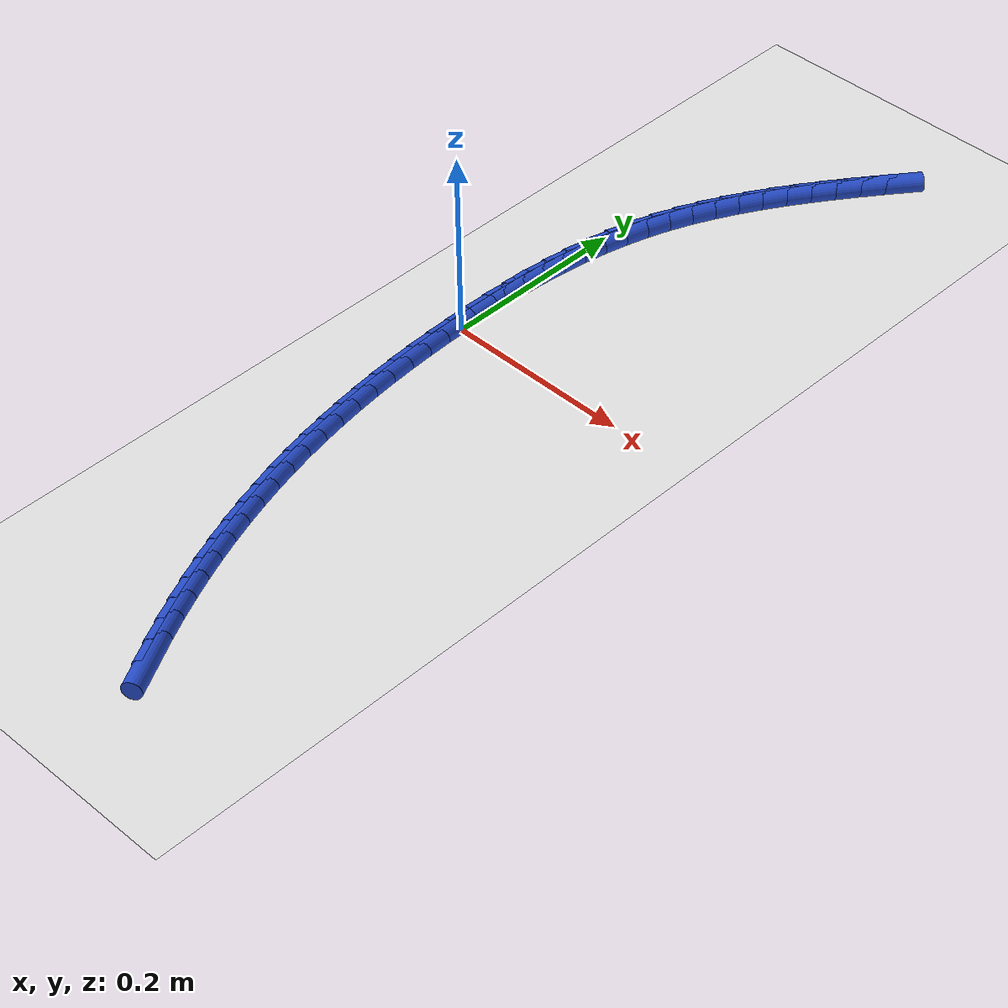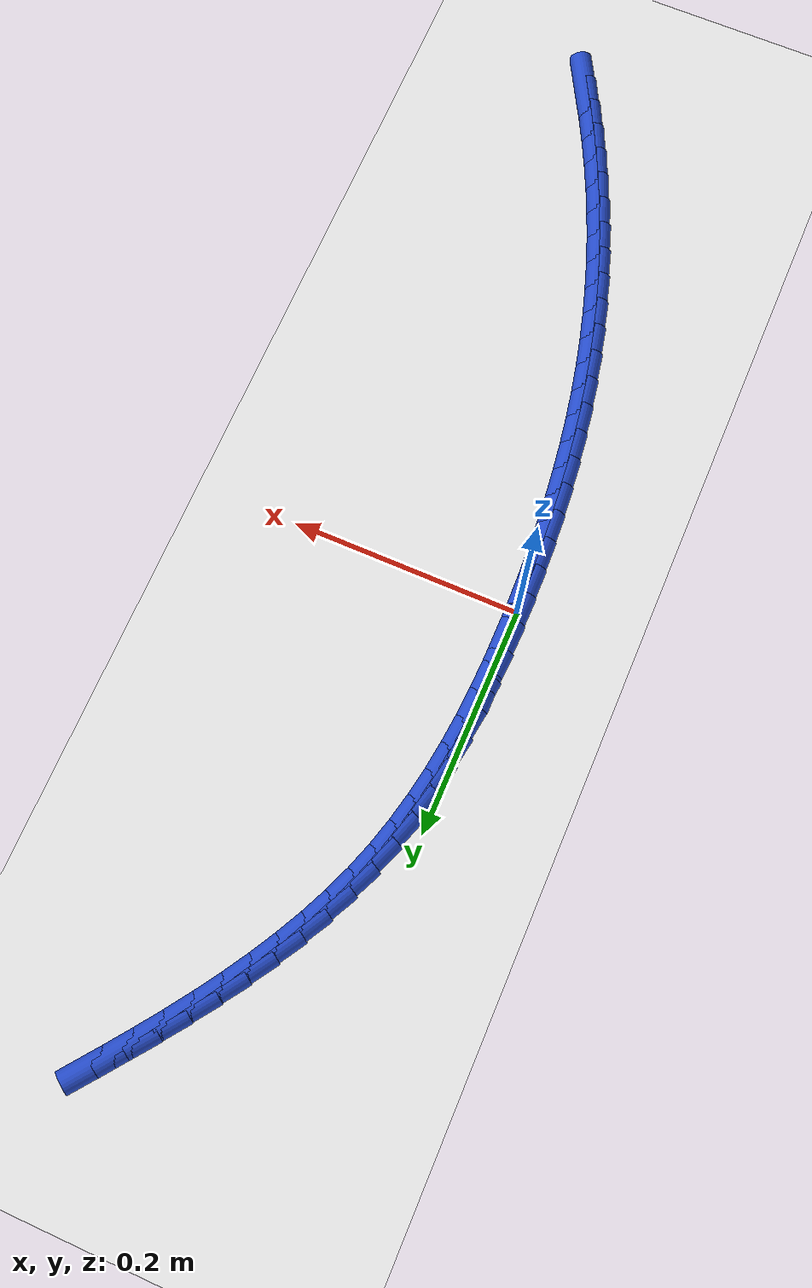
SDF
<sdf version="1.6">
 <world name="default">
  <model name="ground_plane">
   <static>1</static>
   <link name="link">
    <collision name="collision">
     <geometry><plane><normal>0 0 1</normal><size>100 100</size></plane></geometry>
     <surface><friction><ode><mu>100</mu><mu2>50</mu2></ode></friction></surface>
    </collision>
    <visual name="visual">
     <cast_shadows>0</cast_shadows>
     <geometry><plane><normal>0 0 1</normal><size>100 100</size></plane></geometry>
     <material>
      <script><uri>file://media/materials/scripts/gazebo.material</uri><name>Gazebo/WhiteGlow</name></script>
     </material>
    </visual>
   </link>
  </model>
  <model name="line">
   <link name="link_0">
    <pose>-1.0842021724855044e-18 2.7755575615628914e-17 0.01 0 1.57 -1.5603251618580196</pose>
    <collision name="collision">
     <geometry><cylinder><radius>0.01</radius><length>0.08</length></cylinder></geometry>
    </collision>
    <visual name="visual">
     <material>
      <script><name>Gazebo/Blue</name><uri>file://media/materials/scripts/gazebo.material</uri></script>
     </material>
     <geometry><cylinder><radius>0.01</radius><length>0.08</length></cylinder></geometry>
    </visual>
   </link>
   <link name="link_1">
    <pose>-0.0002701414424099219 0.02579766155151942 0.01 0 1.57 1.5595440917151902</pose>
    <collision name="collision">
     <geometry><cylinder><radius>0.01</radius><length>0.08</length></cylinder></geometry>
    </collision>
    <visual name="visual">
     <material>
      <script><name>Gazebo/Blue</name><uri>file://media/materials/scripts/gazebo.material</uri></script>
     </material>
     <geometry><cylinder><radius>0.01</radius><length>0.08</length></cylinder></geometry>
    </visual>
   </link>
   <link name="link_2">
    <pose>2.0445288560491106e-05 0.05162137255731039 0.01 0 1.57 1.5342640760914426</pose>
    <collision name="collision">
     <geometry><cylinder><radius>0.01</radius><length>0.08</length></cylinder></geometry>
    </collision>
    <visual name="visual">
     <material>
      <script><name>Gazebo/Blue</name><uri>file://media/materials/scripts/gazebo.material</uri></script>
     </material>
     <geometry><cylinder><radius>0.01</radius><length>0.08</length></cylinder></geometry>
    </visual>
   </link>
   <link name="link_3">
    <pose>0.0009629880714867451 0.07741018709593615 0.01 0 1.57 1.5052798086044072</pose>
    <collision name="collision">
     <geometry><cylinder><radius>0.01</radius><length>0.08</length></cylinder></geometry>
    </collision>
    <visual name="visual">
     <material>
      <script><name>Gazebo/Blue</name><uri>file://media/materials/scripts/gazebo.material</uri></script>
     </material>
     <geometry><cylinder><radius>0.01</radius><length>0.08</length></cylinder></geometry>
    </visual>
   </link>
   <link name="link_4">
    <pose>0.002648714784944347 0.10310315924595989 0.01 0 1.57 1.472425936517467</pose>
    <collision name="collision">
     <geometry><cylinder><radius>0.01</radius><length>0.08</length></cylinder></geometry>
    </collision>
    <visual name="visual">
     <material>
      <script><name>Gazebo/Blue</name><uri>file://media/materials/scripts/gazebo.material</uri></script>
     </material>
     <geometry><cylinder><radius>0.01</radius><length>0.08</length></cylinder></geometry>
    </visual>
   </link>
   <link name="link_5">
    <pose>0.005168853307508804 0.1286393430859448 0.01 0 1.57 1.4355298800457483</pose>
    <collision name="collision">
     <geometry><cylinder><radius>0.01</radius><length>0.08</length></cylinder></geometry>
    </collision>
    <visual name="visual">
     <material>
      <script><name>Gazebo/Blue</name><uri>file://media/materials/scripts/gazebo.material</uri></script>
     </material>
     <geometry><cylinder><radius>0.01</radius><length>0.08</length></cylinder></geometry>
    </visual>
   </link>
   <link name="link_6">
    <pose>0.008614631517755624 0.15395779269445406 0.01 0 1.57 1.3944258125383404</pose>
    <collision name="collision">
     <geometry><cylinder><radius>0.01</radius><length>0.08</length></cylinder></geometry>
    </collision>
    <visual name="visual">
     <material>
      <script><name>Gazebo/Blue</name><uri>file://media/materials/scripts/gazebo.material</uri></script>
     </material>
     <geometry><cylinder><radius>0.01</radius><length>0.08</length></cylinder></geometry>
    </visual>
   </link>
   <link name="link_7">
    <pose>0.013077277294260312 0.17899756215005097 0.01 0 1.57 1.3489729384937394</pose>
    <collision name="collision">
     <geometry><cylinder><radius>0.01</radius><length>0.08</length></cylinder></geometry>
    </collision>
    <visual name="visual">
     <material>
      <script><name>Gazebo/Blue</name><uri>file://media/materials/scripts/gazebo.material</uri></script>
     </material>
     <geometry><cylinder><radius>0.01</radius><length>0.08</length></cylinder></geometry>
    </visual>
   </link>
   <link name="link_8">
    <pose>0.01864801851559838 0.20369770553129862 0.01 0 1.57 1.2990785257821285</pose>
    <collision name="collision">
     <geometry><cylinder><radius>0.01</radius><length>0.08</length></cylinder></geometry>
    </collision>
    <visual name="visual">
     <material>
      <script><name>Gazebo/Blue</name><uri>file://media/materials/scripts/gazebo.material</uri></script>
     </material>
     <geometry><cylinder><radius>0.01</radius><length>0.08</length></cylinder></geometry>
    </visual>
   </link>
   <link name="link_9">
    <pose>0.025418083060345327 0.22799727691676025 0.01 0 1.57 1.2449418229550864</pose>
    <collision name="collision">
     <geometry><cylinder><radius>0.01</radius><length>0.08</length></cylinder></geometry>
    </collision>
    <visual name="visual">
     <material>
      <script><name>Gazebo/Blue</name><uri>file://media/materials/scripts/gazebo.material</uri></script>
     </material>
     <geometry><cylinder><radius>0.01</radius><length>0.08</length></cylinder></geometry>
    </visual>
   </link>
   <link name="link_10">
    <pose>0.033473717230176406 0.25183759924479177 0.01 0 1.57 1.1910577845415524</pose>
    <collision name="collision">
     <geometry><cylinder><radius>0.01</radius><length>0.08</length></cylinder></geometry>
    </collision>
    <visual name="visual">
     <material>
      <script><name>Gazebo/Blue</name><uri>file://media/materials/scripts/gazebo.material</uri></script>
     </material>
     <geometry><cylinder><radius>0.01</radius><length>0.08</length></cylinder></geometry>
    </visual>
   </link>
   <link name="link_11">
    <pose>0.04280025278954684 0.2752059569917476 0.01 0 1.57 1.141720539695457</pose>
    <collision name="collision">
     <geometry><cylinder><radius>0.01</radius><length>0.08</length></cylinder></geometry>
    </collision>
    <visual name="visual">
     <material>
      <script><name>Gazebo/Blue</name><uri>file://media/materials/scripts/gazebo.material</uri></script>
     </material>
     <geometry><cylinder><radius>0.01</radius><length>0.08</length></cylinder></geometry>
    </visual>
   </link>
   <link name="link_12">
    <pose>0.053289159484183765 0.29813238410159343 0.01 0 1.57 1.0972111444542392</pose>
    <collision name="collision">
     <geometry><cylinder><radius>0.01</radius><length>0.08</length></cylinder></geometry>
    </collision>
    <visual name="visual">
     <material>
      <script><name>Gazebo/Blue</name><uri>file://media/materials/scripts/gazebo.material</uri></script>
     </material>
     <geometry><cylinder><radius>0.01</radius><length>0.08</length></cylinder></geometry>
    </visual>
   </link>
   <link name="link_13">
    <pose>0.06482833830782857 0.32064853990681197 0.01 0 1.57 1.0575499763880079</pose>
    <collision name="collision">
     <geometry><cylinder><radius>0.01</radius><length>0.08</length></cylinder></geometry>
    </collision>
    <visual name="visual">
     <material>
      <script><name>Gazebo/Blue</name><uri>file://media/materials/scripts/gazebo.material</uri></script>
     </material>
     <geometry><cylinder><radius>0.01</radius><length>0.08</length></cylinder></geometry>
    </visual>
   </link>
   <link name="link_14">
    <pose>0.0773056902542226 0.3427860837398861 0.01 0 1.57 1.0226829581184442</pose>
    <collision name="collision">
     <geometry><cylinder><radius>0.01</radius><length>0.08</length></cylinder></geometry>
    </collision>
    <visual name="visual">
     <material>
      <script><name>Gazebo/Blue</name><uri>file://media/materials/scripts/gazebo.material</uri></script>
     </material>
     <geometry><cylinder><radius>0.01</radius><length>0.08</length></cylinder></geometry>
    </visual>
   </link>
   <link name="link_15">
    <pose>0.09060911631710718 0.3645766749332985 0.01 0 1.57 0.9925098947791501</pose>
    <collision name="collision">
     <geometry><cylinder><radius>0.01</radius><length>0.08</length></cylinder></geometry>
    </collision>
    <visual name="visual">
     <material>
      <script><name>Gazebo/Blue</name><uri>file://media/materials/scripts/gazebo.material</uri></script>
     </material>
     <geometry><cylinder><radius>0.01</radius><length>0.08</length></cylinder></geometry>
    </visual>
   </link>
   <link name="link_16">
    <pose>0.1046265174902237 0.3860519728195321 0.01 0 1.57 0.9669083268073221</pose>
    <collision name="collision">
     <geometry><cylinder><radius>0.01</radius><length>0.08</length></cylinder></geometry>
    </collision>
    <visual name="visual">
     <material>
      <script><name>Gazebo/Blue</name><uri>file://media/materials/scripts/gazebo.material</uri></script>
     </material>
     <geometry><cylinder><radius>0.01</radius><length>0.08</length></cylinder></geometry>
    </visual>
   </link>
   <link name="link_17">
    <pose>0.1192457947673135 0.40724363673106945 0.01 0 1.57 0.9457525347122957</pose>
    <collision name="collision">
     <geometry><cylinder><radius>0.01</radius><length>0.08</length></cylinder></geometry>
    </collision>
    <visual name="visual">
     <material>
      <script><name>Gazebo/Blue</name><uri>file://media/materials/scripts/gazebo.material</uri></script>
     </material>
     <geometry><cylinder><radius>0.01</radius><length>0.08</length></cylinder></geometry>
    </visual>
   </link>
   <link name="link_18">
    <pose>0.13435484914211787 0.42818332600039344 0.01 0 1.57 0.9289280894465428</pose>
    <collision name="collision">
     <geometry><cylinder><radius>0.01</radius><length>0.08</length></cylinder></geometry>
    </collision>
    <visual name="visual">
     <material>
      <script><name>Gazebo/Blue</name><uri>file://media/materials/scripts/gazebo.material</uri></script>
     </material>
     <geometry><cylinder><radius>0.01</radius><length>0.08</length></cylinder></geometry>
    </visual>
   </link>
   <link name="link_19">
    <pose>0.14984158160837827 0.4489026999599868 0.01 0 1.57 0.9163426927815157</pose>
    <collision name="collision">
     <geometry><cylinder><radius>0.01</radius><length>0.08</length></cylinder></geometry>
    </collision>
    <visual name="visual">
     <material>
      <script><name>Gazebo/Blue</name><uri>file://media/materials/scripts/gazebo.material</uri></script>
     </material>
     <geometry><cylinder><radius>0.01</radius><length>0.08</length></cylinder></geometry>
    </visual>
   </link>
   <link name="link_240">
    <pose>0.1275472444378693 -0.4885320790127863 0.01 0 1.57 -1.0701911203394223</pose>
    <collision name="collision">
     <geometry><cylinder><radius>0.01</radius><length>0.08</length></cylinder></geometry>
    </collision>
    <visual name="visual">
     <material>
      <script><name>Gazebo/Blue</name><uri>file://media/materials/scripts/gazebo.material</uri></script>
     </material>
     <geometry><cylinder><radius>0.01</radius><length>0.08</length></cylinder></geometry>
    </visual>
   </link>
   <link name="link_241">
    <pose>0.11521129594308037 -0.46598372214505385 0.01 0 1.57 -1.096110599936363</pose>
    <collision name="collision">
     <geometry><cylinder><radius>0.01</radius><length>0.08</length></cylinder></geometry>
    </collision>
    <visual name="visual">
     <material>
      <script><name>Gazebo/Blue</name><uri>file://media/materials/scripts/gazebo.material</uri></script>
     </material>
     <geometry><cylinder><radius>0.01</radius><length>0.08</length></cylinder></geometry>
    </visual>
   </link>
   <link name="link_242">
    <pose>0.10348096943237915 -0.44315651439572856 0.01 0 1.57 -1.1220027458234654</pose>
    <collision name="collision">
     <geometry><cylinder><radius>0.01</radius><length>0.08</length></cylinder></geometry>
    </collision>
    <visual name="visual">
     <material>
      <script><name>Gazebo/Blue</name><uri>file://media/materials/scripts/gazebo.material</uri></script>
     </material>
     <geometry><cylinder><radius>0.01</radius><length>0.08</length></cylinder></geometry>
    </visual>
   </link>
   <link name="link_243">
    <pose>0.09236257345792548 -0.4200686101291398 0.01 0 1.57 -1.1479966930116592</pose>
    <collision name="collision">
     <geometry><cylinder><radius>0.01</radius><length>0.08</length></cylinder></geometry>
    </collision>
    <visual name="visual">
     <material>
      <script><name>Gazebo/Blue</name><uri>file://media/materials/scripts/gazebo.material</uri></script>
     </material>
     <geometry><cylinder><radius>0.01</radius><length>0.08</length></cylinder></geometry>
    </visual>
   </link>
   <link name="link_244">
    <pose>0.0818634734949841 -0.3967338915313437 0.01 0 1.57 -1.174105593444063</pose>
    <collision name="collision">
     <geometry><cylinder><radius>0.01</radius><length>0.08</length></cylinder></geometry>
    </collision>
    <visual name="visual">
     <material>
      <script><name>Gazebo/Blue</name><uri>file://media/materials/scripts/gazebo.material</uri></script>
     </material>
     <geometry><cylinder><radius>0.01</radius><length>0.08</length></cylinder></geometry>
    </visual>
   </link>
   <link name="link_245">
    <pose>0.07199103517281029 -0.3731662401659502 0.01 0 1.57 -1.2003423474835624</pose>
    <collision name="collision">
     <geometry><cylinder><radius>0.01</radius><length>0.08</length></cylinder></geometry>
    </collision>
    <visual name="visual">
     <material>
      <script><name>Gazebo/Blue</name><uri>file://media/materials/scripts/gazebo.material</uri></script>
     </material>
     <geometry><cylinder><radius>0.01</radius><length>0.08</length></cylinder></geometry>
    </visual>
   </link>
   <link name="link_246">
    <pose>0.06275262412066028 -0.3493795375965716 0.01 0 1.57 -1.226719540876936</pose>
    <collision name="collision">
     <geometry><cylinder><radius>0.01</radius><length>0.08</length></cylinder></geometry>
    </collision>
    <visual name="visual">
     <material>
      <script><name>Gazebo/Blue</name><uri>file://media/materials/scripts/gazebo.material</uri></script>
     </material>
     <geometry><cylinder><radius>0.01</radius><length>0.08</length></cylinder></geometry>
    </visual>
   </link>
   <link name="link_247">
    <pose>0.05415560596778945 -0.3253876653868182 0.01 0 1.57 -1.2532493614479365</pose>
    <collision name="collision">
     <geometry><cylinder><radius>0.01</radius><length>0.08</length></cylinder></geometry>
    </collision>
    <visual name="visual">
     <material>
      <script><name>Gazebo/Blue</name><uri>file://media/materials/scripts/gazebo.material</uri></script>
     </material>
     <geometry><cylinder><radius>0.01</radius><length>0.08</length></cylinder></geometry>
    </visual>
   </link>
   <link name="link_248">
    <pose>0.046207346343453415 -0.30120450510030083 0.01 0 1.57 -1.2799435117548976</pose>
    <collision name="collision">
     <geometry><cylinder><radius>0.01</radius><length>0.08</length></cylinder></geometry>
    </collision>
    <visual name="visual">
     <material>
      <script><name>Gazebo/Blue</name><uri>file://media/materials/scripts/gazebo.material</uri></script>
     </material>
     <geometry><cylinder><radius>0.01</radius><length>0.08</length></cylinder></geometry>
    </visual>
   </link>
   <link name="link_249">
    <pose>0.03891521087690781 -0.2768439383006303 0.01 0 1.57 -1.3068131176182756</pose>
    <collision name="collision">
     <geometry><cylinder><radius>0.01</radius><length>0.08</length></cylinder></geometry>
    </collision>
    <visual name="visual">
     <material>
      <script><name>Gazebo/Blue</name><uri>file://media/materials/scripts/gazebo.material</uri></script>
     </material>
     <geometry><cylinder><radius>0.01</radius><length>0.08</length></cylinder></geometry>
    </visual>
   </link>
   <link name="link_250">
    <pose>0.03228656519740828 -0.2523198465514175 0.01 0 1.57 -1.3338504225596615</pose>
    <collision name="collision">
     <geometry><cylinder><radius>0.01</radius><length>0.08</length></cylinder></geometry>
    </collision>
    <visual name="visual">
     <material>
      <script><name>Gazebo/Blue</name><uri>file://media/materials/scripts/gazebo.material</uri></script>
     </material>
     <geometry><cylinder><radius>0.01</radius><length>0.08</length></cylinder></geometry>
    </visual>
   </link>
   <link name="link_251">
    <pose>0.02632826534544631 -0.2276459702797083 0.01 0 1.57 -1.3605780542760328</pose>
    <collision name="collision">
     <geometry><cylinder><radius>0.01</radius><length>0.08</length></cylinder></geometry>
    </collision>
    <visual name="visual">
     <material>
      <script><name>Gazebo/Blue</name><uri>file://media/materials/scripts/gazebo.material</uri></script>
     </material>
     <geometry><cylinder><radius>0.01</radius><length>0.08</length></cylinder></geometry>
    </visual>
   </link>
   <link name="link_252">
    <pose>0.021033764628480417 -0.20283233786896201 0.01 0 1.57 -1.3864542150054324</pose>
    <collision name="collision">
     <geometry><cylinder><radius>0.01</radius><length>0.08</length></cylinder></geometry>
    </collision>
    <visual name="visual">
     <material>
      <script><name>Gazebo/Blue</name><uri>file://media/materials/scripts/gazebo.material</uri></script>
     </material>
     <geometry><cylinder><radius>0.01</radius><length>0.08</length></cylinder></geometry>
    </visual>
   </link>
   <link name="link_253">
    <pose>0.016382106578643897 -0.17788498674692008 0.01 0 1.57 -1.4114238642617065</pose>
    <collision name="collision">
     <geometry><cylinder><radius>0.01</radius><length>0.08</length></cylinder></geometry>
    </collision>
    <visual name="visual">
     <material>
      <script><name>Gazebo/Blue</name><uri>file://media/materials/scripts/gazebo.material</uri></script>
     </material>
     <geometry><cylinder><radius>0.01</radius><length>0.08</length></cylinder></geometry>
    </visual>
   </link>
   <link name="link_254">
    <pose>0.012351623399396031 -0.15280975733053012 0.01 0 1.57 -1.435464009824685</pose>
    <collision name="collision">
     <geometry><cylinder><radius>0.01</radius><length>0.08</length></cylinder></geometry>
    </collision>
    <visual name="visual">
     <material>
      <script><name>Gazebo/Blue</name><uri>file://media/materials/scripts/gazebo.material</uri></script>
     </material>
     <geometry><cylinder><radius>0.01</radius><length>0.08</length></cylinder></geometry>
    </visual>
   </link>
   <link name="link_255">
    <pose>0.008920647294196277 -0.1276124900367407 0.01 0 1.57 -1.4585578008985647</pose>
    <collision name="collision">
     <geometry><cylinder><radius>0.01</radius><length>0.08</length></cylinder></geometry>
    </collision>
    <visual name="visual">
     <material>
      <script><name>Gazebo/Blue</name><uri>file://media/materials/scripts/gazebo.material</uri></script>
     </material>
     <geometry><cylinder><radius>0.01</radius><length>0.08</length></cylinder></geometry>
    </visual>
   </link>
   <link name="link_256">
    <pose>0.006067510466504087 -0.10229902528250039 0.01 0 1.57 -1.4806939779760488</pose>
    <collision name="collision">
     <geometry><cylinder><radius>0.01</radius><length>0.08</length></cylinder></geometry>
    </collision>
    <visual name="visual">
     <material>
      <script><name>Gazebo/Blue</name><uri>file://media/materials/scripts/gazebo.material</uri></script>
     </material>
     <geometry><cylinder><radius>0.01</radius><length>0.08</length></cylinder></geometry>
    </visual>
   </link>
   <link name="link_257">
    <pose>0.003770545119778911 -0.07687520348475761 0.01 0 1.57 -1.5018662855708511</pose>
    <collision name="collision">
     <geometry><cylinder><radius>0.01</radius><length>0.08</length></cylinder></geometry>
    </collision>
    <visual name="visual">
     <material>
      <script><name>Gazebo/Blue</name><uri>file://media/materials/scripts/gazebo.material</uri></script>
     </material>
     <geometry><cylinder><radius>0.01</radius><length>0.08</length></cylinder></geometry>
    </visual>
   </link>
   <link name="link_258">
    <pose>0.002008083457480202 -0.051346865060460926 0.01 0 1.57 -1.522072869323601</pose>
    <collision name="collision">
     <geometry><cylinder><radius>0.01</radius><length>0.08</length></cylinder></geometry>
    </collision>
    <visual name="visual">
     <material>
      <script><name>Gazebo/Blue</name><uri>file://media/materials/scripts/gazebo.material</uri></script>
     </material>
     <geometry><cylinder><radius>0.01</radius><length>0.08</length></cylinder></geometry>
    </visual>
   </link>
   <link name="link_259">
    <pose>0.000758457683067412 -0.025719850426558853 0.01 0 1.57 -1.5413156754558124</pose>
    <collision name="collision">
     <geometry><cylinder><radius>0.01</radius><length>0.08</length></cylinder></geometry>
    </collision>
    <visual name="visual">
     <material>
      <script><name>Gazebo/Blue</name><uri>file://media/materials/scripts/gazebo.material</uri></script>
     </material>
     <geometry><cylinder><radius>0.01</radius><length>0.08</length></cylinder></geometry>
    </visual>
   </link>
   <link name="link_260">
    <pose>-6.5052130349130266e-18 1.249000902703301e-16 0.01 0 1.57 -1.5595998669198397</pose>
    <collision name="collision">
     <geometry><cylinder><radius>0.01</radius><length>0.08</length></cylinder></geometry>
    </collision>
    <visual name="visual">
     <material>
      <script><name>Gazebo/Blue</name><uri>file://media/materials/scripts/gazebo.material</uri></script>
     </material>
     <geometry><cylinder><radius>0.01</radius><length>0.08</length></cylinder></geometry>
    </visual>
   </link>
   <link name="link_261">
    <pose>-0.0002889573882626003 0.025806845802267473 0.01 0 1.57 1.564659386482542</pose>
    <collision name="collision">
     <geometry><cylinder><radius>0.01</radius><length>0.08</length></cylinder></geometry>
    </collision>
    <visual name="visual">
     <material>
      <script><name>Gazebo/Blue</name><uri>file://media/materials/scripts/gazebo.material</uri></script>
     </material>
     <geometry><cylinder><radius>0.01</radius><length>0.08</length></cylinder></geometry>
    </visual>
   </link>
   <link name="link_262">
    <pose>-0.0001300822782609205 0.05169484656329468 0.01 0 1.57 -1.5682799830517766</pose>
    <collision name="collision">
     <geometry><cylinder><radius>0.01</radius><length>0.08</length></cylinder></geometry>
    </collision>
    <visual name="visual">
     <material>
      <script><name>Gazebo/Blue</name><uri>file://media/materials/scripts/gazebo.material</uri></script>
     </material>
     <geometry><cylinder><radius>0.01</radius><length>0.08</length></cylinder></geometry>
    </visual>
   </link>
  </model>
 </world>
</sdf>
